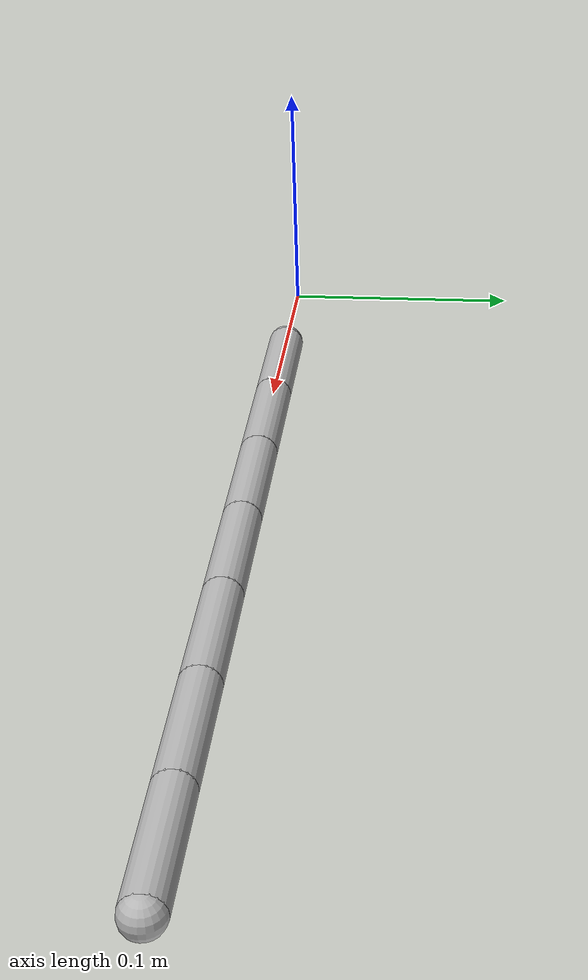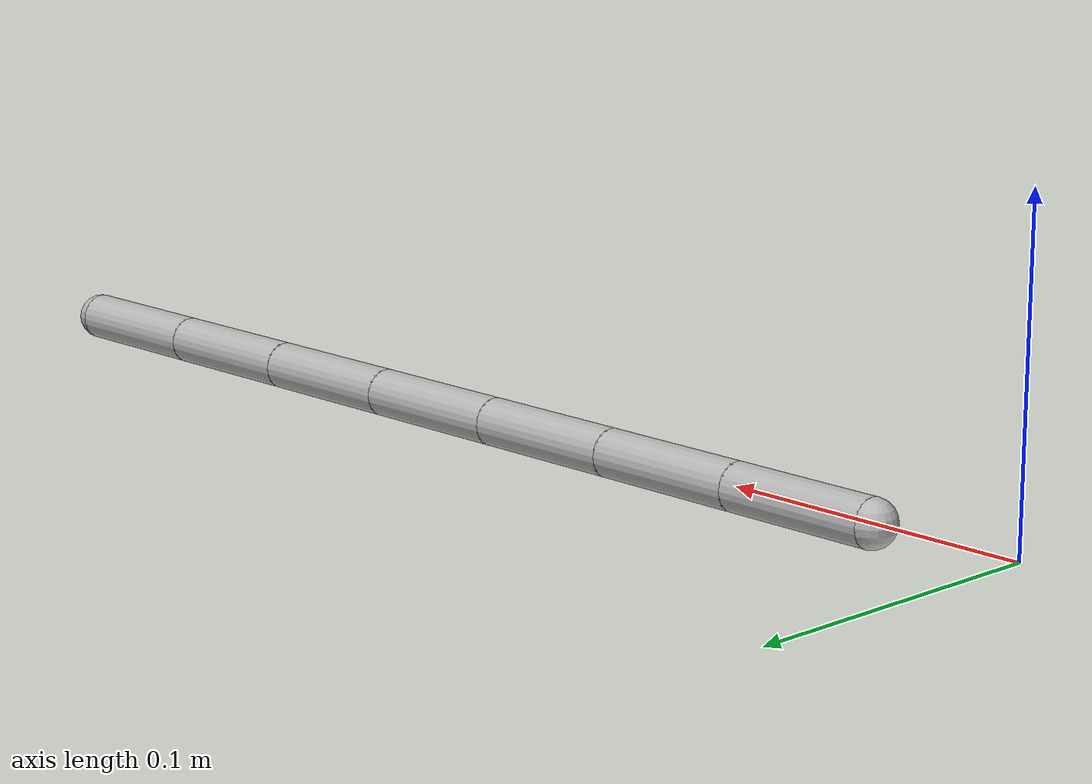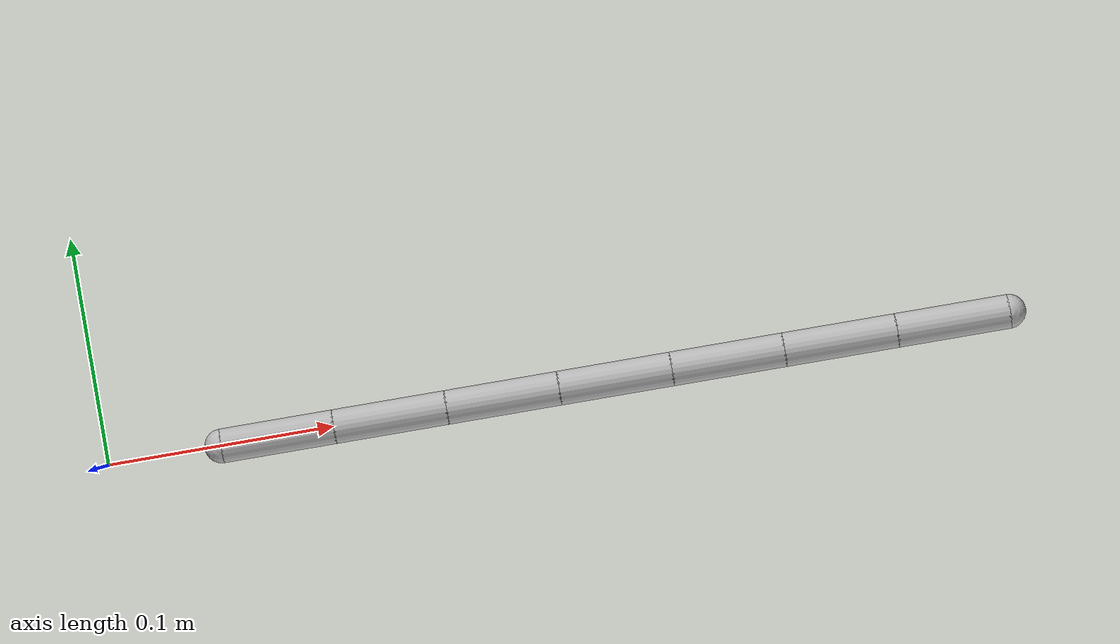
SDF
<?xml version="1.0" ?>
<sdf version="1.7">
  <model name="cable">

    <link name="sphere_01">
      <gravity>false</gravity>
      <pose>0.0500000 0.000000 0.000000 0.000000 -0.000000 0.000000</pose>
      <inertial>
        <pose>0.000000 0.000000 0.000000 0.000000 -0.000000 0.000000</pose>
        <mass>0.050000</mass>
        <inertia>
          <ixx>0.010000</ixx>
          <ixy>0.000000</ixy>
          <ixz>0.000000</ixz>
          <iyy>0.010000</iyy>
          <iyz>0.000000</iyz>
          <izz>0.010000</izz>
        </inertia>
      </inertial>
      <collision name="sphere_01_collision">
        <pose>0.000000 0.000000 0.000000 0.000000 -0.000000 0.000000</pose>
        <geometry>
          <sphere>
            <radius>0.007500</radius>
          </sphere>
        </geometry>
      </collision>
      <visual name="sphere_01_vis">
        <pose>0.000000 0.000000 0.000000 0.000000 -0.000000 0.000000</pose>
        <geometry>
          <sphere>
            <radius>0.007500</radius>
          </sphere>
        </geometry>
      </visual>
      <velocity_decay />
    </link>
    <link name="link_01">
      <pose>0.050000 0.000000 0.000000 0.000000 -0.000000 0.000000</pose>
      <inertial>
        <pose>0.000000 0.000000 0.000000 0.000000 -0.000000 0.000000</pose>
        <mass>0.200000</mass>
        <inertia>
          <ixx>0.010000</ixx>
          <ixy>0.000000</ixy>
          <ixz>0.000000</ixz>
          <iyy>0.010000</iyy>
          <iyz>0.000000</iyz>
          <izz>0.010000</izz>
        </inertia>
      </inertial>
      <collision name="link_01_collision">
        <pose>0.025000 0.000000 0.000000 0.000000 1.570790 0.000000</pose>
        <geometry>
          <cylinder>
            <length>0.050000</length>
            <radius>0.007500</radius>
          </cylinder>
        </geometry>
      </collision>
      <visual name="link_01_vis">
        <pose>0.025000 0.000000 0.000000 0.000000 1.570790 0.000000</pose>
        <geometry>
          <cylinder>
            <length>0.050000</length>
            <radius>0.007500</radius>
          </cylinder>
        </geometry>
      </visual>
      <velocity_decay />
    </link>
    <joint name="joint_01_2" type="revolute">
      <child>link_01</child>
      <parent>sphere_01</parent>
      <axis>
        <xyz>0.000000 0.000000 1.000000</xyz>
        <limit>
          <lower>-1</lower>
          <upper>1</upper>
        </limit>
        <dynamics>
         <damping>0.001</damping>
          <friction>0.000010</friction>
	  <spring_stiffness>0.00265</spring_stiffness>
        </dynamics>
        <use_parent_model_frame>true</use_parent_model_frame>
      </axis>
    </joint>
    <link name="sphere_02">
      <gravity>false</gravity>
      <pose>0.100000 0.000000 0.000000 0.000000 -0.000000 0.000000</pose>
      <inertial>
        <pose>0.000000 0.000000 0.000000 0.000000 -0.000000 0.000000</pose>
        <mass>0.050000</mass>
        <inertia>
          <ixx>0.010000</ixx>
          <ixy>0.000000</ixy>
          <ixz>0.000000</ixz>
          <iyy>0.010000</iyy>
          <iyz>0.000000</iyz>
          <izz>0.010000</izz>
        </inertia>
      </inertial>
      <collision name="sphere_02_collision">
        <pose>0.000000 0.000000 0.000000 0.000000 -0.000000 0.000000</pose>
        <geometry>
          <sphere>
            <radius>0.007500</radius>
          </sphere>
        </geometry>
      </collision>
      <visual name="sphere_02_vis">
        <pose>0.000000 0.000000 0.000000 0.000000 -0.000000 0.000000</pose>
        <geometry>
          <sphere>
            <radius>0.007500</radius>
          </sphere>
        </geometry>
      </visual>
      <velocity_decay />
    </link>
    <joint name="joint_02_1" type="fixed">
      <child>sphere_02</child>
      <parent>link_01</parent>
      <axis>
        <xyz>0.000000 0.000000 1.000000</xyz>
        <limit>
          <lower>-0.1000</lower>
          <upper>0.1000</upper>
        </limit>
        <dynamics>
          <damping>0</damping>
          <friction>0.000000</friction>
        </dynamics>
        <use_parent_model_frame>true</use_parent_model_frame>
      </axis>
    </joint>
    <link name="link_02">

      <pose>0.100000 0.000000 0.000000 0.000000 -0.000000 0.000000</pose>
      <inertial>
        <pose>0.000000 0.000000 0.000000 0.000000 -0.000000 0.000000</pose>
        <mass>0.200000</mass>
        <inertia>
          <ixx>0.010000</ixx>
          <ixy>0.000000</ixy>
          <ixz>0.000000</ixz>
          <iyy>0.010000</iyy>
          <iyz>0.000000</iyz>
          <izz>0.010000</izz>
        </inertia>
      </inertial>
      <collision name="link_02_collision">
        <pose>0.025000 0.000000 0.000000 0.000000 1.570790 0.000000</pose>
        <geometry>
          <cylinder>
            <length>0.050000</length>
            <radius>0.007500</radius>
          </cylinder>
        </geometry>
      </collision>
      <visual name="link_02_vis">
        <pose>0.025000 0.000000 0.000000 0.000000 1.570790 0.000000</pose>
        <geometry>
          <cylinder>
            <length>0.050000</length>
            <radius>0.007500</radius>
          </cylinder>
        </geometry>
      </visual>
      <velocity_decay />
    </link>
    <joint name="joint_02_2" type="revolute">
      <child>link_02</child>
      <parent>sphere_02</parent>
      <axis>
        <xyz>0.000000 0.000000 1.000000</xyz>
        <dynamics>
          <damping>0.001</damping>
          <friction>0.0000100</friction>
          <spring_stiffness>0.00239</spring_stiffness>
        </dynamics>
        <use_parent_model_frame>true</use_parent_model_frame>
      </axis>
    </joint>
    <link name="sphere_03">
      <gravity>false</gravity>
      <pose>0.150000 0.000000 0.000000 0.000000 -0.000000 0.000000</pose>
      <inertial>
        <pose>0.000000 0.000000 0.000000 0.000000 -0.000000 0.000000</pose>
        <mass>0.050000</mass>
        <inertia>
          <ixx>0.010000</ixx>
          <ixy>0.000000</ixy>
          <ixz>0.000000</ixz>
          <iyy>0.010000</iyy>
          <iyz>0.000000</iyz>
          <izz>0.010000</izz>
        </inertia>
      </inertial>
      <collision name="sphere_03_collision">
        <pose>0.000000 0.000000 0.000000 0.000000 -0.000000 0.000000</pose>
        <geometry>
          <sphere>
            <radius>0.007500</radius>
          </sphere>
        </geometry>
      </collision>
      <visual name="sphere_03_vis">
        <pose>0.000000 0.000000 0.000000 0.000000 -0.000000 0.000000</pose>
        <geometry>
          <sphere>
            <radius>0.007500</radius>
          </sphere>
        </geometry>
      </visual>
      <velocity_decay />
    </link>
    <joint name="joint_03_1" type="fixed">
      <child>sphere_03</child>
      <parent>link_02</parent>
      <axis>
        <xyz>0.000000 0.000000 1.000000</xyz>
        <dynamics>
          <damping>0</damping>
          <friction>0.000000</friction>
	  <spring_stiffness>0.002738</spring_stiffness>
        </dynamics>
        <use_parent_model_frame>true</use_parent_model_frame>
      </axis>
    </joint>
    <link name="link_03">

      <pose>0.150000 0.000000 0.000000 0.000000 -0.000000 0.000000</pose>
      <inertial>
        <pose>0.000000 0.000000 0.000000 0.000000 -0.000000 0.000000</pose>
        <mass>0.200000</mass>
        <inertia>
          <ixx>0.010000</ixx>
          <ixy>0.000000</ixy>
          <ixz>0.000000</ixz>
          <iyy>0.010000</iyy>
          <iyz>0.000000</iyz>
          <izz>0.010000</izz>
        </inertia>
      </inertial>
      <collision name="link_03_collision">
        <pose>0.025000 0.000000 0.000000 0.000000 1.570790 0.000000</pose>
        <geometry>
          <cylinder>
            <length>0.050000</length>
            <radius>0.007500</radius>
          </cylinder>
        </geometry>
      </collision>
      <visual name="link_03_vis">
        <pose>0.025000 0.000000 0.000000 0.000000 1.570790 0.000000</pose>
        <geometry>
          <cylinder>
            <length>0.050000</length>
            <radius>0.007500</radius>
          </cylinder>
        </geometry>
      </visual>
      <velocity_decay />
    </link>
    <joint name="joint_03_2" type="revolute">
      <child>link_03</child>
      <parent>sphere_03</parent>
      <axis>
        <xyz>0.000000 0.000000 1.000000</xyz>
        <dynamics>
         <damping>0.001</damping>
          <friction>0.0000100</friction>
	  <spring_stiffness>0.00265</spring_stiffness>
        </dynamics>
        <use_parent_model_frame>true</use_parent_model_frame>
      </axis>
    </joint>
    <link name="sphere_04">
      <gravity>false</gravity>
      <pose>0.200000 0.000000 0.000000 0.000000 -0.000000 0.000000</pose>
      <inertial>
        <pose>0.000000 0.000000 0.000000 0.000000 -0.000000 0.000000</pose>
        <mass>0.050000</mass>
        <inertia>
          <ixx>0.010000</ixx>
          <ixy>0.000000</ixy>
          <ixz>0.000000</ixz>
          <iyy>0.010000</iyy>
          <iyz>0.000000</iyz>
          <izz>0.010000</izz>
        </inertia>
      </inertial>
      <collision name="sphere_04_collision">
        <pose>0.000000 0.000000 0.000000 0.000000 -0.000000 0.000000</pose>
        <geometry>
          <sphere>
            <radius>0.007500</radius>
          </sphere>
        </geometry>
      </collision>
      <visual name="sphere_04_vis">
        <pose>0.000000 0.000000 0.000000 0.000000 -0.000000 0.000000</pose>
        <geometry>
          <sphere>
            <radius>0.007500</radius>
          </sphere>
        </geometry>
      </visual>
      <velocity_decay />
    </link>
    <joint name="joint_04_1" type="fixed">
      <child>sphere_04</child>
      <parent>link_03</parent>
      <axis>
        <xyz>0.000000 0.000000 1.000000</xyz>
        <limit>
          <lower>-1</lower>
          <upper>1</upper>
        </limit>
        <dynamics>
          <damping>0.000000</damping>
          <friction>0.000000</friction>
        </dynamics>
        <use_parent_model_frame>true</use_parent_model_frame>
      </axis>
    </joint>
    <link name="link_04">
      <pose>0.200000 0.000000 0.000000 0.000000 -0.000000 0.000000</pose>
      <inertial>
        <pose>0.000000 0.000000 0.000000 0.000000 -0.000000 0.000000</pose>
        <mass>0.200000</mass>
        <inertia>
          <ixx>0.010000</ixx>
          <ixy>0.000000</ixy>
          <ixz>0.000000</ixz>
          <iyy>0.010000</iyy>
          <iyz>0.000000</iyz>
          <izz>0.010000</izz>
        </inertia>
      </inertial>
      <collision name="link_04_collision">
        <pose>0.025000 0.000000 0.000000 0.000000 1.570790 0.000000</pose>
        <geometry>
          <cylinder>
            <length>0.050000</length>
            <radius>0.007500</radius>
          </cylinder>
        </geometry>
      </collision>
      <visual name="link_04_vis">
        <pose>0.025000 0.000000 0.000000 0.000000 1.570790 0.000000</pose>
        <geometry>
          <cylinder>
            <length>0.050000</length>
            <radius>0.007500</radius>
          </cylinder>
        </geometry>
      </visual>
      <velocity_decay />
    </link>
    <joint name="joint_04_2" type="revolute">
      <child>link_04</child>
      <parent>sphere_04</parent>
      <axis>
        <xyz>0.000000 0.000000 1.000000</xyz>
        <dynamics>
          <damping>0.001</damping>
          <friction>0.0000100</friction>
	  <spring_stiffness>0.00238</spring_stiffness>
        </dynamics>
        <use_parent_model_frame>true</use_parent_model_frame>
      </axis>
    </joint>
    <link name="sphere_05">
      <gravity>false</gravity>
      <pose>0.250000 0.000000 0.000000 0.000000 -0.000000 0.000000</pose>
      <inertial>
        <pose>0.000000 0.000000 0.000000 0.000000 -0.000000 0.000000</pose>
        <mass>0.050000</mass>
        <inertia>
          <ixx>0.010000</ixx>
          <ixy>0.000000</ixy>
          <ixz>0.000000</ixz>
          <iyy>0.010000</iyy>
          <iyz>0.000000</iyz>
          <izz>0.010000</izz>
        </inertia>
      </inertial>
      <collision name="sphere_05_collision">
        <pose>0.000000 0.000000 0.000000 0.000000 -0.000000 0.000000</pose>
        <geometry>
          <sphere>
            <radius>0.007500</radius>
          </sphere>
        </geometry>
      </collision>
      <visual name="sphere_05_vis">
        <pose>0.000000 0.000000 0.000000 0.000000 -0.000000 0.000000</pose>
        <geometry>
          <sphere>
            <radius>0.007500</radius>
          </sphere>
        </geometry>
      </visual>
      <velocity_decay />
    </link>
    <joint name="joint_05_1" type="fixed">
      <child>sphere_05</child>
      <parent>link_04</parent>
      <axis>
        <xyz>0.000000 0.000000 1.000000</xyz>
        <limit>
          <lower>-1</lower>
          <upper>1</upper>
        </limit>
        <dynamics>
          <damping>0.000000</damping>
          <friction>0.000000</friction>
        </dynamics>
        <use_parent_model_frame>true</use_parent_model_frame>
      </axis>
    </joint>
    <link name="link_05">
      <pose>0.250000 0.000000 0.000000 0.000000 -0.000000 0.000000</pose>
      <inertial>
        <pose>0.000000 0.000000 0.000000 0.000000 -0.000000 0.000000</pose>
        <mass>0.20000</mass>
        <inertia>
          <ixx>0.010000</ixx>
          <ixy>0.000000</ixy>
          <ixz>0.000000</ixz>
          <iyy>0.010000</iyy>
          <iyz>0.000000</iyz>
          <izz>0.010000</izz>
        </inertia>
      </inertial>
      <collision name="link_05_collision">
        <pose>0.025000 0.000000 0.000000 0.000000 1.570790 0.000000</pose>
        <geometry>
          <cylinder>
            <length>0.050000</length>
            <radius>0.007500</radius>
          </cylinder>
        </geometry>
      </collision>
      <visual name="link_05_vis">
        <pose>0.025000 0.000000 0.000000 0.000000 1.570790 0.000000</pose>
        <geometry>
          <cylinder>
            <length>0.050000</length>
            <radius>0.007500</radius>
          </cylinder>
        </geometry>
      </visual>
      <velocity_decay />
    </link>
    <joint name="joint_05_2" type="revolute">
      <child>link_05</child>
      <parent>sphere_05</parent>
      <axis>
        <xyz>0.000000 0.000000 1.000000</xyz>
        <dynamics>
          <damping>0.001</damping>
          <friction>0.0000100</friction>
	  <spring_stiffness>0.00238</spring_stiffness>
        </dynamics>
        <use_parent_model_frame>true</use_parent_model_frame>
      </axis>
    </joint>
    <link name="sphere_06">
      <gravity>false</gravity>
      <pose>0.300000 0.000000 0.000000 0.000000 -0.000000 0.000000</pose>
      <inertial>
        <pose>0.000000 0.000000 0.000000 0.000000 -0.000000 0.000000</pose>
        <mass>0.050000</mass>
        <inertia>
          <ixx>0.010000</ixx>
          <ixy>0.000000</ixy>
          <ixz>0.000000</ixz>
          <iyy>0.010000</iyy>
          <iyz>0.000000</iyz>
          <izz>0.010000</izz>
        </inertia>
      </inertial>
      <collision name="sphere_06_collision">
        <pose>0.000000 0.000000 0.000000 0.000000 -0.000000 0.000000</pose>
        <geometry>
          <sphere>
            <radius>0.007500</radius>
          </sphere>
        </geometry>
      </collision>
      <visual name="sphere_06_vis">
        <pose>0.000000 0.000000 0.000000 0.000000 -0.000000 0.000000</pose>
        <geometry>
          <sphere>
            <radius>0.007500</radius>
          </sphere>
        </geometry>
      </visual>
      <velocity_decay />
    </link>
    <joint name="joint_06_1" type="fixed">
      <child>sphere_06</child>
      <parent>link_05</parent>
      <axis>
        <xyz>0.000000 0.000000 1.000000</xyz>
        <limit>
          <lower>-1</lower>
          <upper>1</upper>
        </limit>
        <dynamics>
          <damping>0.000000</damping>
          <friction>0.000000</friction>
        </dynamics>
        <use_parent_model_frame>true</use_parent_model_frame>
      </axis>
    </joint>
    <link name="link_06">
      <pose>0.300000 0.000000 0.000000 0.000000 -0.000000 0.000000</pose>
      <inertial>
        <pose>0.000000 0.000000 0.000000 0.000000 -0.000000 0.000000</pose>
        <mass>0.200000</mass>
        <inertia>
          <ixx>0.010000</ixx>
          <ixy>0.000000</ixy>
          <ixz>0.000000</ixz>
          <iyy>0.010000</iyy>
          <iyz>0.000000</iyz>
          <izz>0.010000</izz>
        </inertia>
      </inertial>
      <collision name="link_06_collision">
        <pose>0.025000 0.000000 0.000000 0.000000 1.570790 0.000000</pose>
        <geometry>
          <cylinder>
            <length>0.050000</length>
            <radius>0.007500</radius>
          </cylinder>
        </geometry>
      </collision>
      <visual name="link_06_vis">
        <pose>0.025000 0.000000 0.000000 0.000000 1.570790 0.000000</pose>
        <geometry>
          <cylinder>
            <length>0.050000</length>
            <radius>0.007500</radius>
          </cylinder>
        </geometry>
      </visual>
      <velocity_decay />
    </link>
    <joint name="joint_06_2" type="revolute">
      <child>link_06</child>
      <parent>sphere_06</parent>
      <axis>
        <xyz>0.000000 0.000000 1.000000</xyz>
        <limit>
          <lower>-1</lower>
          <upper>1</upper>
        </limit>
        <dynamics>
          <damping>0.001</damping>
          <friction>0.0000100</friction>
	  <spring_stiffness>0.002738</spring_stiffness>
        </dynamics>
        <use_parent_model_frame>true</use_parent_model_frame>
      </axis>
    </joint>
    <link name="sphere_07">
      <gravity>false</gravity>
      <pose>0.350000 0.000000 0.000000 0.000000 -0.000000 0.000000</pose>
      <inertial>
        <pose>0.000000 0.000000 0.000000 0.000000 -0.000000 0.000000</pose>
        <mass>0.050000</mass>
        <inertia>
          <ixx>0.010000</ixx>
          <ixy>0.000000</ixy>
          <ixz>0.000000</ixz>
          <iyy>0.010000</iyy>
          <iyz>0.000000</iyz>
          <izz>0.010000</izz>
        </inertia>
      </inertial>
      <collision name="sphere_07_collision">
        <pose>0.000000 0.000000 0.000000 0.000000 -0.000000 0.000000</pose>
        <geometry>
          <sphere>
            <radius>0.007500</radius>
          </sphere>
        </geometry>
      </collision>
      <visual name="sphere_07_vis">
        <pose>0.000000 0.000000 0.000000 0.000000 -0.000000 0.000000</pose>
        <geometry>
          <sphere>
            <radius>0.007500</radius>
          </sphere>
        </geometry>
      </visual>
      <velocity_decay />
    </link>
    <joint name="joint_07_1" type="fixed">
      <child>sphere_07</child>
      <parent>link_06</parent>
      <axis>
        <xyz>0.000000 0.000000 1.000000</xyz>
        <limit>
          <lower>-1</lower>
          <upper>1</upper>
        </limit>
        <dynamics>
          <damping>0.000000</damping>
          <friction>0.000000</friction>
        </dynamics>
        <use_parent_model_frame>true</use_parent_model_frame>
      </axis>
    </joint>
    <link name="link_07">

      <pose>0.350000 0.000000 0.000000 0.000000 -0.000000 0.000000</pose>
      <inertial>
        <pose>0.000000 0.000000 0.000000 0.000000 -0.000000 0.000000</pose>
        <mass>0.200000</mass>
        <inertia>
          <ixx>0.010000</ixx>
          <ixy>0.000000</ixy>
          <ixz>0.000000</ixz>
          <iyy>0.010000</iyy>
          <iyz>0.000000</iyz>
          <izz>0.010000</izz>
        </inertia>
      </inertial>
      <collision name="link_07_collision">
        <pose>0.025000 0.000000 0.000000 0.000000 1.570790 0.000000</pose>
        <geometry>
          <cylinder>
            <length>0.050000</length>
            <radius>0.007500</radius>
          </cylinder>
        </geometry>
      </collision>
      <visual name="link_07_vis">
        <pose>0.025000 0.000000 0.000000 0.000000 1.570790 0.000000</pose>
        <geometry>
          <cylinder>
            <length>0.050000</length>
            <radius>0.007500</radius>
          </cylinder>
        </geometry>
      </visual>
      <velocity_decay />
    </link>
    <joint name="joint_07_2" type="revolute">
      <child>link_07</child>
      <parent>sphere_07</parent>
      <axis>
        <xyz>0.000000 0.000000 1.000000</xyz>
        <limit>
          <lower>-1</lower>
          <upper>1</upper>
        </limit>
        <dynamics>
         <damping>0.001</damping>
          <friction>0.0000100</friction>
	  <spring_stiffness>0.002038</spring_stiffness>
        </dynamics>
        <use_parent_model_frame>true</use_parent_model_frame>
      </axis>
    </joint>
     <link name="sphere_08">
      <gravity>false</gravity>
      <pose>0.400000 0.000000 0.000000 0.000000 -0.000000 0.000000</pose>
      <inertial>
        <pose>0.000000 0.000000 0.000000 0.000000 -0.000000 0.000000</pose>
        <mass>0.0500000</mass>
        <inertia>
          <ixx>0.010000</ixx>
          <ixy>0.000000</ixy>
          <ixz>0.000000</ixz>
          <iyy>0.010000</iyy>
          <iyz>0.000000</iyz>
          <izz>0.010000</izz>
        </inertia>
      </inertial>
      <collision name="sphere_08_collision">
        <pose>0.000000 0.000000 0.000000 0.000000 -0.000000 0.000000</pose>
        <geometry>
          <sphere>
            <radius>0.007500</radius>
          </sphere>
        </geometry>
      </collision>
      <visual name="sphere_08_vis">
        <pose>0.000000 0.000000 0.000000 0.000000 -0.000000 0.000000</pose>
        <geometry>
          <sphere>
            <radius>0.007500</radius>
          </sphere>
        </geometry>
      </visual>
      <velocity_decay />
    </link>
    <joint name="joint_08_1" type="fixed">
      <child>sphere_08</child>
      <parent>link_07</parent>
      <axis>
        <xyz>0.000000 0.000000 1.000000</xyz>
        <limit>
          <lower>-1</lower>
          <upper>1</upper>
        </limit>
        <dynamics>
          <damping>10.000000</damping>
          <friction>0.000000</friction>
        </dynamics>
        <use_parent_model_frame>true</use_parent_model_frame>
      </axis>
    </joint>

  </model>
</sdf>
